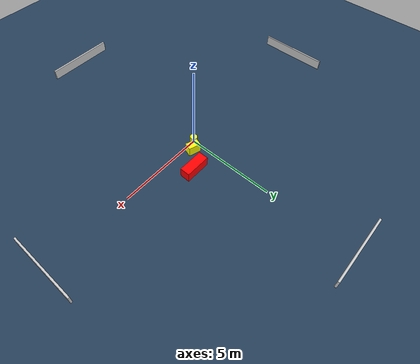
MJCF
<?xml version="1.0" ?>
<mujoco model="generated_environment">
  <option timestep="0.01" integrator="RK4" cone="elliptic"/>
  <default>
    <geom density="1"/>
  </default>
  <asset>
    <texture builtin="gradient" height="3072" name="skybox" rgb1="0.3 0.5 0.7" rgb2="0 0 0" type="skybox" width="512"/>
    <texture builtin="checker" height="300" name="groundplane" rgb1="0.2 0.3 0.4" rgb2="0.1 0.2 0.3" type="2d" width="300"/>
    <material name="groundplane" reflectance="0.2" texrepeat="5 5" texture="groundplane"/>
  </asset>
  <worldbody>
    <light dir="0 0 -1" directional="true" pos="0 0 1.5"/>
    <geom condim="3" friction="0.5 0.005 0.001" material="groundplane" name="floor" pos="0 0 0" size="0 0 0.05" type="plane"/>
    <body name="walls">
      <geom name="wall_1" condim="4" pos="-10.0 0.0 0.3" rgba="0.800000011920929 0.800000011920929 0.800000011920929 1.0" size="0.05 2.0 0.3" type="box"/>
      <geom name="wall_2" condim="4" pos="10.0 0.0 0.3" rgba="0.800000011920929 0.800000011920929 0.800000011920929 1.0" size="0.05 2.0 0.3" type="box"/>
      <geom name="wall_3" condim="4" pos="0.0 -10.0 0.3" rgba="0.800000011920929 0.800000011920929 0.800000011920929 1.0" size="2.0 0.05 0.3" type="box"/>
      <geom name="wall_4" condim="4" pos="0.0 10.0 0.3" rgba="0.800000011920929 0.800000011920929 0.800000011920929 1.0" size="2.0 0.05 0.3" type="box"/>
    </body>
    <body name="robot">
      <joint name="joint_x" type="slide" pos="0 0 0" axis="1 0 0"/>
      <joint name="joint_y" type="slide" pos="0 0 0" axis="0 1 0"/>
      <geom name="robot" type="cylinder" pos="0.0 0.0 0.2" size="0.2 0.2 0.0" mass="5.0" friction="1.0 0.005 0.0001" condim="4" rgba="1.0 1.0 0.0 1.0"/>
    </body>
    <body name="obstacle_1_movable">
      <geom name="obstacle_1_movable" condim="4" pos="0.5351143468318551 0.42698657056023714 0.3" euler="0 0 252.4250799851832" friction="0.0 0.005 0.001" rgba="1.0 1.0 0.0 1.0" size="0.20985558320855155 0.349085743899952 0.3" type="box" mass="0.1"/>
      <joint type="free"/>
    </body>
    <body name="obstacle_2_static">
      <geom name="obstacle_2_static" condim="4" pos="1.452189383625251 1.3256990737535275 0.3" euler="0 0 89.57883920723725" friction="0.0 0.005 0.001" rgba="1.0 0.0 0.0 1.0" size="0.28088220297239896 0.72911334818482 0.3" type="box"/>
    </body>
  </worldbody>
  <actuator>
    <motor name="actuator_x" joint="joint_x" gear="1" ctrlrange="-1 1"/>
    <motor name="actuator_y" joint="joint_y" gear="1" ctrlrange="-1 1"/>
  </actuator>
</mujoco>
